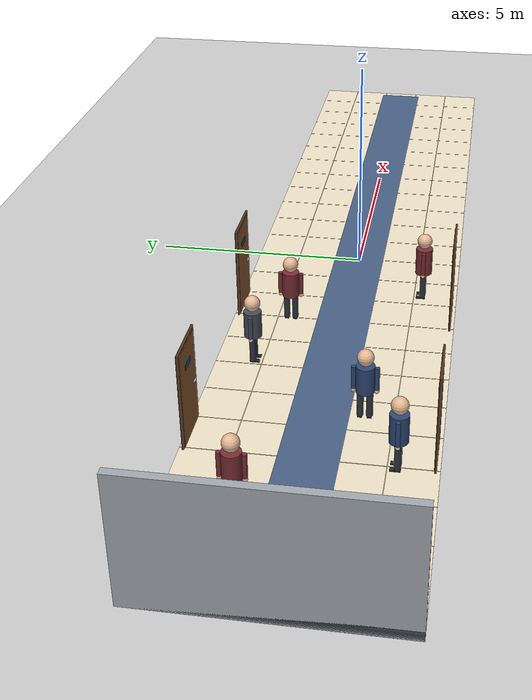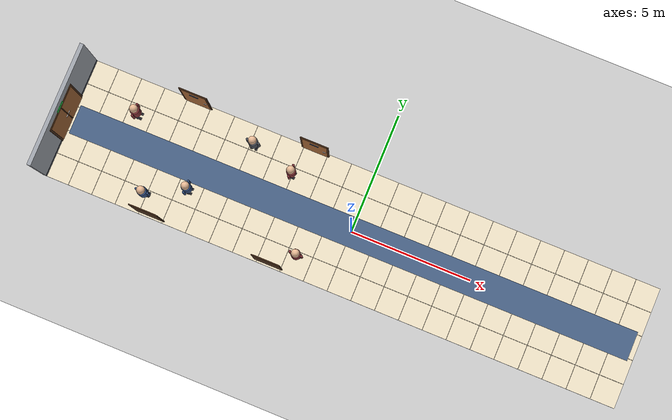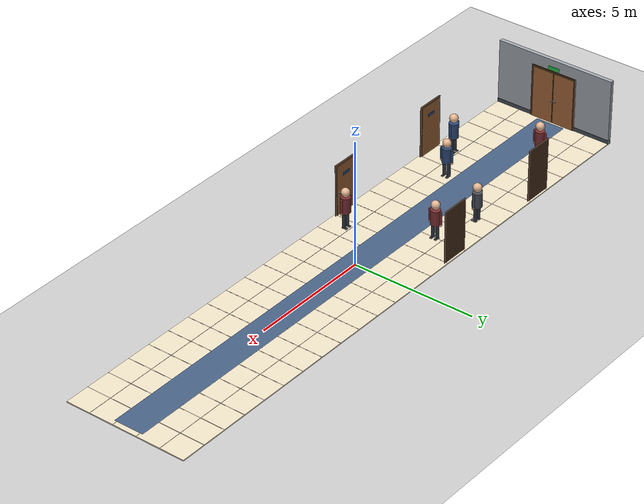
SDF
<sdf version="1.6">
 <world name="default">
  <include><uri>model://ground_plane</uri></include>
  <include><uri>model://sun</uri></include>
  <model name="koridor_zemini">
   <static>true</static>
   <pose>0 0 0.023 0 0 0</pose>
   <link name="link">
    <collision name="zemin_col"><geometry><box><size>24.0 5.0 0.046</size></box></geometry></collision>
    <visual name="zemin">
     <geometry><box><size>24.0 5.0 0.046</size></box></geometry>
     <material>
      <ambient>0.85 0.80 0.70 1</ambient>
      <diffuse>0.94 0.89 0.78 1</diffuse>
      <specular>0.35 0.35 0.35 1</specular>
     </material>
    </visual>
   </link>
  </model>
  <model name="koridor_serit">
   <static>true</static>
   <pose>0 0 0.048 0 0 0</pose>
   <link name="link">
    <visual name="orta_serit">
     <geometry><box><size>23.6 1.20 0.0008</size></box></geometry>
     <material><ambient>0.22 0.30 0.42 1</ambient><diffuse>0.28 0.38 0.52 1</diffuse></material>
    </visual>
   </link>
  </model>
  <model name="koridor_derzleri">
   <static>true</static>
   <pose>0 0 0.047 0 0 0</pose>
   <link name="link">
    <visual name="x_1">
     <pose>-11 0 0 0 0 0</pose>
     <geometry><box><size>0.015 5.0 0.0005</size></box></geometry>
     <material><ambient>0.68 0.63 0.54 1</ambient><diffuse>0.76 0.71 0.61 1</diffuse></material>
    </visual>
    <visual name="x_2">
     <pose>-10 0 0 0 0 0</pose>
     <geometry><box><size>0.015 5.0 0.0005</size></box></geometry>
     <material><ambient>0.68 0.63 0.54 1</ambient><diffuse>0.76 0.71 0.61 1</diffuse></material>
    </visual>
    <visual name="x_3">
     <pose>-9 0 0 0 0 0</pose>
     <geometry><box><size>0.015 5.0 0.0005</size></box></geometry>
     <material><ambient>0.68 0.63 0.54 1</ambient><diffuse>0.76 0.71 0.61 1</diffuse></material>
    </visual>
    <visual name="x_4">
     <pose>-8 0 0 0 0 0</pose>
     <geometry><box><size>0.015 5.0 0.0005</size></box></geometry>
     <material><ambient>0.68 0.63 0.54 1</ambient><diffuse>0.76 0.71 0.61 1</diffuse></material>
    </visual>
    <visual name="x_5">
     <pose>-7 0 0 0 0 0</pose>
     <geometry><box><size>0.015 5.0 0.0005</size></box></geometry>
     <material><ambient>0.68 0.63 0.54 1</ambient><diffuse>0.76 0.71 0.61 1</diffuse></material>
    </visual>
    <visual name="x_6">
     <pose>-6 0 0 0 0 0</pose>
     <geometry><box><size>0.015 5.0 0.0005</size></box></geometry>
     <material><ambient>0.68 0.63 0.54 1</ambient><diffuse>0.76 0.71 0.61 1</diffuse></material>
    </visual>
    <visual name="x_7">
     <pose>-5 0 0 0 0 0</pose>
     <geometry><box><size>0.015 5.0 0.0005</size></box></geometry>
     <material><ambient>0.68 0.63 0.54 1</ambient><diffuse>0.76 0.71 0.61 1</diffuse></material>
    </visual>
    <visual name="x_8">
     <pose>-4 0 0 0 0 0</pose>
     <geometry><box><size>0.015 5.0 0.0005</size></box></geometry>
     <material><ambient>0.68 0.63 0.54 1</ambient><diffuse>0.76 0.71 0.61 1</diffuse></material>
    </visual>
    <visual name="x_9">
     <pose>-3 0 0 0 0 0</pose>
     <geometry><box><size>0.015 5.0 0.0005</size></box></geometry>
     <material><ambient>0.68 0.63 0.54 1</ambient><diffuse>0.76 0.71 0.61 1</diffuse></material>
    </visual>
    <visual name="x_10">
     <pose>-2 0 0 0 0 0</pose>
     <geometry><box><size>0.015 5.0 0.0005</size></box></geometry>
     <material><ambient>0.68 0.63 0.54 1</ambient><diffuse>0.76 0.71 0.61 1</diffuse></material>
    </visual>
    <visual name="x_11">
     <pose>-1 0 0 0 0 0</pose>
     <geometry><box><size>0.015 5.0 0.0005</size></box></geometry>
     <material><ambient>0.68 0.63 0.54 1</ambient><diffuse>0.76 0.71 0.61 1</diffuse></material>
    </visual>
    <visual name="x_12">
     <geometry><box><size>0.015 5.0 0.0005</size></box></geometry>
     <material><ambient>0.68 0.63 0.54 1</ambient><diffuse>0.76 0.71 0.61 1</diffuse></material>
    </visual>
    <visual name="x_13">
     <pose>1 0 0 0 0 0</pose>
     <geometry><box><size>0.015 5.0 0.0005</size></box></geometry>
     <material><ambient>0.68 0.63 0.54 1</ambient><diffuse>0.76 0.71 0.61 1</diffuse></material>
    </visual>
    <visual name="x_14">
     <pose>2 0 0 0 0 0</pose>
     <geometry><box><size>0.015 5.0 0.0005</size></box></geometry>
     <material><ambient>0.68 0.63 0.54 1</ambient><diffuse>0.76 0.71 0.61 1</diffuse></material>
    </visual>
    <visual name="x_15">
     <pose>3 0 0 0 0 0</pose>
     <geometry><box><size>0.015 5.0 0.0005</size></box></geometry>
     <material><ambient>0.68 0.63 0.54 1</ambient><diffuse>0.76 0.71 0.61 1</diffuse></material>
    </visual>
    <visual name="x_16">
     <pose>4 0 0 0 0 0</pose>
     <geometry><box><size>0.015 5.0 0.0005</size></box></geometry>
     <material><ambient>0.68 0.63 0.54 1</ambient><diffuse>0.76 0.71 0.61 1</diffuse></material>
    </visual>
    <visual name="x_17">
     <pose>5 0 0 0 0 0</pose>
     <geometry><box><size>0.015 5.0 0.0005</size></box></geometry>
     <material><ambient>0.68 0.63 0.54 1</ambient><diffuse>0.76 0.71 0.61 1</diffuse></material>
    </visual>
    <visual name="x_18">
     <pose>6 0 0 0 0 0</pose>
     <geometry><box><size>0.015 5.0 0.0005</size></box></geometry>
     <material><ambient>0.68 0.63 0.54 1</ambient><diffuse>0.76 0.71 0.61 1</diffuse></material>
    </visual>
    <visual name="x_19">
     <pose>7 0 0 0 0 0</pose>
     <geometry><box><size>0.015 5.0 0.0005</size></box></geometry>
     <material><ambient>0.68 0.63 0.54 1</ambient><diffuse>0.76 0.71 0.61 1</diffuse></material>
    </visual>
    <visual name="x_20">
     <pose>8 0 0 0 0 0</pose>
     <geometry><box><size>0.015 5.0 0.0005</size></box></geometry>
     <material><ambient>0.68 0.63 0.54 1</ambient><diffuse>0.76 0.71 0.61 1</diffuse></material>
    </visual>
    <visual name="x_21">
     <pose>9 0 0 0 0 0</pose>
     <geometry><box><size>0.015 5.0 0.0005</size></box></geometry>
     <material><ambient>0.68 0.63 0.54 1</ambient><diffuse>0.76 0.71 0.61 1</diffuse></material>
    </visual>
    <visual name="x_22">
     <pose>10 0 0 0 0 0</pose>
     <geometry><box><size>0.015 5.0 0.0005</size></box></geometry>
     <material><ambient>0.68 0.63 0.54 1</ambient><diffuse>0.76 0.71 0.61 1</diffuse></material>
    </visual>
    <visual name="x_23">
     <pose>11 0 0 0 0 0</pose>
     <geometry><box><size>0.015 5.0 0.0005</size></box></geometry>
     <material><ambient>0.68 0.63 0.54 1</ambient><diffuse>0.76 0.71 0.61 1</diffuse></material>
    </visual>
    <visual name="y_1">
     <pose>0 -1.5 0 0 0 0</pose>
     <geometry><box><size>24.0 0.015 0.0005</size></box></geometry>
     <material><ambient>0.68 0.63 0.54 1</ambient><diffuse>0.76 0.71 0.61 1</diffuse></material>
    </visual>
    <visual name="y_2">
     <pose>0 -0.5 0 0 0 0</pose>
     <geometry><box><size>24.0 0.015 0.0005</size></box></geometry>
     <material><ambient>0.68 0.63 0.54 1</ambient><diffuse>0.76 0.71 0.61 1</diffuse></material>
    </visual>
    <visual name="y_3">
     <pose>0 0.5 0 0 0 0</pose>
     <geometry><box><size>24.0 0.015 0.0005</size></box></geometry>
     <material><ambient>0.68 0.63 0.54 1</ambient><diffuse>0.76 0.71 0.61 1</diffuse></material>
    </visual>
    <visual name="y_4">
     <pose>0 1.5 0 0 0 0</pose>
     <geometry><box><size>24.0 0.015 0.0005</size></box></geometry>
     <material><ambient>0.68 0.63 0.54 1</ambient><diffuse>0.76 0.71 0.61 1</diffuse></material>
    </visual>
   </link>
  </model>
  <model name="duvar_bati">
   <static>true</static>
   <pose>-12.0 0 1.35 0 0 0</pose>
   <link name="link">
    <collision name="col"><geometry><box><size>0.16 5.0 2.7</size></box></geometry></collision>
    <visual name="duvar">
     <geometry><box><size>0.16 5.0 2.7</size></box></geometry>
     <material><ambient>0.54 0.56 0.59 1</ambient><diffuse>0.64 0.66 0.69 1</diffuse></material>
    </visual>
    <visual name="supurgelik">
     <pose>0.005 0 -1.25 0 0 0</pose>
     <geometry><box><size>0.17 5.0 0.2</size></box></geometry>
     <material><ambient>0.22 0.24 0.27 1</ambient><diffuse>0.28 0.30 0.34 1</diffuse></material>
    </visual>
   </link>
  </model>
  <model name="kapi_kuzey_1">
   <static>true</static>
   <pose>-7.5 2.41 0 0 0 0</pose>
   <link name="link">
    <visual name="kasa">
     <pose>0 0 1.08 0 0 0</pose>
     <geometry><box><size>1.16 0.04 2.16</size></box></geometry>
     <material><ambient>0.22 0.14 0.08 1</ambient><diffuse>0.30 0.19 0.11 1</diffuse></material>
    </visual>
    <visual name="kanat">
     <pose>0 -0.008 1.05 0 0 0</pose>
     <geometry><box><size>1.02 0.045 2.08</size></box></geometry>
     <material><ambient>0.52 0.32 0.16 1</ambient><diffuse>0.65 0.41 0.22 1</diffuse></material>
    </visual>
    <visual name="kol">
     <pose>0.40 -0.04 0.98 0 0 0</pose>
     <geometry><box><size>0.12 0.03 0.03</size></box></geometry>
     <material><ambient>0.75 0.75 0.78 1</ambient><diffuse>0.88 0.88 0.90 1</diffuse></material>
    </visual>
    <visual name="tabela">
     <pose>0 -0.035 1.65 0 0 0</pose>
     <geometry><box><size>0.36 0.015 0.12</size></box></geometry>
     <material><ambient>0.12 0.22 0.38 1</ambient><diffuse>0.16 0.30 0.50 1</diffuse></material>
    </visual>
   </link>
  </model>
  <model name="kapi_kuzey_2">
   <static>true</static>
   <pose>-2.5 2.41 0 0 0 0</pose>
   <link name="link">
    <visual name="kasa">
     <pose>0 0 1.08 0 0 0</pose>
     <geometry><box><size>1.16 0.04 2.16</size></box></geometry>
     <material><ambient>0.22 0.14 0.08 1</ambient><diffuse>0.30 0.19 0.11 1</diffuse></material>
    </visual>
    <visual name="kanat">
     <pose>0 -0.008 1.05 0 0 0</pose>
     <geometry><box><size>1.02 0.045 2.08</size></box></geometry>
     <material><ambient>0.52 0.32 0.16 1</ambient><diffuse>0.65 0.41 0.22 1</diffuse></material>
    </visual>
    <visual name="kol">
     <pose>0.40 -0.04 0.98 0 0 0</pose>
     <geometry><box><size>0.12 0.03 0.03</size></box></geometry>
     <material><ambient>0.75 0.75 0.78 1</ambient><diffuse>0.88 0.88 0.90 1</diffuse></material>
    </visual>
    <visual name="tabela">
     <pose>0 -0.035 1.65 0 0 0</pose>
     <geometry><box><size>0.36 0.015 0.12</size></box></geometry>
     <material><ambient>0.12 0.22 0.38 1</ambient><diffuse>0.16 0.30 0.50 1</diffuse></material>
    </visual>
   </link>
  </model>
  <model name="kapi_guney_1">
   <static>true</static>
   <pose>-7.5 -2.41 0 0 0 0</pose>
   <link name="link">
    <visual name="kasa">
     <pose>0 0 1.08 0 0 0</pose>
     <geometry><box><size>1.16 0.04 2.16</size></box></geometry>
     <material><ambient>0.22 0.14 0.08 1</ambient><diffuse>0.30 0.19 0.11 1</diffuse></material>
    </visual>
    <visual name="kanat">
     <pose>0 0.008 1.05 0 0 0</pose>
     <geometry><box><size>1.02 0.045 2.08</size></box></geometry>
     <material><ambient>0.52 0.32 0.16 1</ambient><diffuse>0.65 0.41 0.22 1</diffuse></material>
    </visual>
    <visual name="kol">
     <pose>0.40 0.04 0.98 0 0 0</pose>
     <geometry><box><size>0.12 0.03 0.03</size></box></geometry>
     <material><ambient>0.75 0.75 0.78 1</ambient><diffuse>0.88 0.88 0.90 1</diffuse></material>
    </visual>
    <visual name="tabela">
     <pose>0 0.035 1.65 0 0 0</pose>
     <geometry><box><size>0.36 0.015 0.12</size></box></geometry>
     <material><ambient>0.12 0.22 0.38 1</ambient><diffuse>0.16 0.30 0.50 1</diffuse></material>
    </visual>
   </link>
  </model>
  <model name="kapi_guney_2">
   <static>true</static>
   <pose>-2.5 -2.41 0 0 0 0</pose>
   <link name="link">
    <visual name="kasa">
     <pose>0 0 1.08 0 0 0</pose>
     <geometry><box><size>1.16 0.04 2.16</size></box></geometry>
     <material><ambient>0.22 0.14 0.08 1</ambient><diffuse>0.30 0.19 0.11 1</diffuse></material>
    </visual>
    <visual name="kanat">
     <pose>0 0.008 1.05 0 0 0</pose>
     <geometry><box><size>1.02 0.045 2.08</size></box></geometry>
     <material><ambient>0.52 0.32 0.16 1</ambient><diffuse>0.65 0.41 0.22 1</diffuse></material>
    </visual>
    <visual name="kol">
     <pose>0.40 0.04 0.98 0 0 0</pose>
     <geometry><box><size>0.12 0.03 0.03</size></box></geometry>
     <material><ambient>0.75 0.75 0.78 1</ambient><diffuse>0.88 0.88 0.90 1</diffuse></material>
    </visual>
    <visual name="tabela">
     <pose>0 0.035 1.65 0 0 0</pose>
     <geometry><box><size>0.36 0.015 0.12</size></box></geometry>
     <material><ambient>0.12 0.22 0.38 1</ambient><diffuse>0.16 0.30 0.50 1</diffuse></material>
    </visual>
   </link>
  </model>
  <model name="kapi_bati_giris">
   <static>true</static>
   <pose>-11.91 0 0 0 0 0</pose>
   <link name="link">
    <visual name="kasa">
     <pose>0 0 1.12 0 0 0</pose>
     <geometry><box><size>0.04 1.96 2.24</size></box></geometry>
     <material><ambient>0.22 0.14 0.08 1</ambient><diffuse>0.30 0.19 0.11 1</diffuse></material>
    </visual>
    <visual name="kanat_sol">
     <pose>0.008 0.46 1.09 0 0 0</pose>
     <geometry><box><size>0.045 0.88 2.16</size></box></geometry>
     <material><ambient>0.52 0.32 0.16 1</ambient><diffuse>0.65 0.41 0.22 1</diffuse></material>
    </visual>
    <visual name="kanat_sag">
     <pose>0.008 -0.46 1.09 0 0 0</pose>
     <geometry><box><size>0.045 0.88 2.16</size></box></geometry>
     <material><ambient>0.52 0.32 0.16 1</ambient><diffuse>0.65 0.41 0.22 1</diffuse></material>
    </visual>
    <visual name="kol_sol">
     <pose>0.04 0.08 0.98 0 0 0</pose>
     <geometry><box><size>0.03 0.12 0.03</size></box></geometry>
     <material><ambient>0.75 0.75 0.78 1</ambient><diffuse>0.88 0.88 0.90 1</diffuse></material>
    </visual>
    <visual name="kol_sag">
     <pose>0.04 -0.08 0.98 0 0 0</pose>
     <geometry><box><size>0.03 0.12 0.03</size></box></geometry>
     <material><ambient>0.75 0.75 0.78 1</ambient><diffuse>0.88 0.88 0.90 1</diffuse></material>
    </visual>
    <visual name="exit_tabela">
     <pose>0.03 0 2.36 0 0 0</pose>
     <geometry><box><size>0.02 0.48 0.16</size></box></geometry>
     <material><ambient>0.10 0.55 0.20 1</ambient><diffuse>0.15 0.75 0.28 1</diffuse></material>
    </visual>
   </link>
  </model>
  <model name="insan_1">
   <static>false</static>
   <pose>-8.0 -1.7 0 0 0 1.57</pose>
   <link name="base_link">
    <inertial>
     <pose>0 0 0.80 0 0 0</pose>
     <mass>50.0</mass>
     <inertia><ixx>100.0</ixx><ixy>0</ixy><ixz>0</ixz><iyy>100.0</iyy><iyz>0</iyz><izz>10.0</izz></inertia>
    </inertial>
    <collision name="tek_collision">
     <pose>0 0 0.8316 0 0 0</pose>
     <geometry><cylinder><radius>0.23</radius><length>1.6132</length></cylinder></geometry>
     <surface><friction><ode><mu>0.0</mu><mu2>0.0</mu2></ode></friction></surface>
    </collision>
    <visual name="govde_vis">
     <pose>0 0 0.9710 0 0 0</pose>
     <geometry><cylinder><radius>0.19</radius><length>0.6144</length></cylinder></geometry>
     <material><ambient>0.14 0.22 0.36 1</ambient><diffuse>0.18 0.28 0.46 1</diffuse></material>
    </visual>
    <visual name="kafa_vis">
     <pose>0 0 1.4682 0 0 0</pose>
     <geometry><sphere><radius>0.17</radius></sphere></geometry>
     <material><ambient>0.85 0.68 0.55 1</ambient><diffuse>0.90 0.72 0.58 1</diffuse></material>
    </visual>
    <visual name="bacak_sol_vis">
     <pose>0 0.095 0.3694 0 0 0</pose>
     <geometry><cylinder><radius>0.068</radius><length>0.5888</length></cylinder></geometry>
     <material><ambient>0.14 0.16 0.20 1</ambient><diffuse>0.18 0.20 0.25 1</diffuse></material>
    </visual>
    <visual name="bacak_sag_vis">
     <pose>0 -0.095 0.3694 0 0 0</pose>
     <geometry><cylinder><radius>0.068</radius><length>0.5888</length></cylinder></geometry>
     <material><ambient>0.14 0.16 0.20 1</ambient><diffuse>0.18 0.20 0.25 1</diffuse></material>
    </visual>
    <visual name="ayak_sol_vis">
     <pose>0.04 0.095 0.0500 0 0 0</pose>
     <geometry><box><size>0.21 0.095 0.05</size></box></geometry>
     <material><ambient>0.10 0.10 0.11 1</ambient><diffuse>0.15 0.15 0.17 1</diffuse></material>
    </visual>
    <visual name="ayak_sag_vis">
     <pose>0.04 -0.095 0.0500 0 0 0</pose>
     <geometry><box><size>0.21 0.095 0.05</size></box></geometry>
     <material><ambient>0.10 0.10 0.11 1</ambient><diffuse>0.15 0.15 0.17 1</diffuse></material>
    </visual>
    <visual name="kol_sol_vis">
     <pose>0 0.235 0.9871 0 0 0</pose>
     <geometry><cylinder><radius>0.048</radius><length>0.5222</length></cylinder></geometry>
     <material><ambient>0.14 0.22 0.36 1</ambient><diffuse>0.18 0.28 0.46 1</diffuse></material>
    </visual>
    <visual name="kol_sag_vis">
     <pose>0 -0.235 0.9871 0 0 0</pose>
     <geometry><cylinder><radius>0.048</radius><length>0.5222</length></cylinder></geometry>
     <material><ambient>0.14 0.22 0.36 1</ambient><diffuse>0.18 0.28 0.46 1</diffuse></material>
    </visual>
    <visual name="el_sol_vis">
     <pose>0 0.235 0.6860 0 0 0</pose>
     <geometry><sphere><radius>0.048</radius></sphere></geometry>
     <material><ambient>0.85 0.68 0.55 1</ambient><diffuse>0.90 0.72 0.58 1</diffuse></material>
    </visual>
    <visual name="el_sag_vis">
     <pose>0 -0.235 0.6860 0 0 0</pose>
     <geometry><sphere><radius>0.048</radius></sphere></geometry>
     <material><ambient>0.85 0.68 0.55 1</ambient><diffuse>0.90 0.72 0.58 1</diffuse></material>
    </visual>
   </link>
   <plugin name="insan_1_planar_move" filename="libgazebo_ros_planar_move.so">
    <ros>
     <namespace>/insan_1</namespace>
     <remapping>cmd_vel:=cmd_vel</remapping>
     <remapping>odom:=odom</remapping>
    </ros>
    <update_rate>30</update_rate>
    <publish_rate>10</publish_rate>
    <publish_odom>false</publish_odom>
    <publish_odom_tf>false</publish_odom_tf>
    <odometry_frame>insan_1_odom</odometry_frame>
    <robot_base_frame>base_link</robot_base_frame>
   </plugin>
  </model>
  <model name="insan_2">
   <static>false</static>
   <pose>-4.8 1.7 0 0 0 -1.57</pose>
   <link name="base_link">
    <inertial>
     <pose>0 0 0.80 0 0 0</pose>
     <mass>50.0</mass>
     <inertia><ixx>100.0</ixx><ixy>0</ixy><ixz>0</ixz><iyy>100.0</iyy><iyz>0</iyz><izz>10.0</izz></inertia>
    </inertial>
    <collision name="tek_collision">
     <pose>0 0 0.8128 0 0 0</pose>
     <geometry><cylinder><radius>0.23</radius><length>1.5756</length></cylinder></geometry>
     <surface><friction><ode><mu>0.0</mu><mu2>0.0</mu2></ode></friction></surface>
    </collision>
    <visual name="govde_vis">
     <pose>0 0 0.9430 0 0 0</pose>
     <geometry><cylinder><radius>0.19</radius><length>0.5952</length></cylinder></geometry>
     <material><ambient>0.22 0.24 0.27 1</ambient><diffuse>0.28 0.30 0.34 1</diffuse></material>
    </visual>
    <visual name="kafa_vis">
     <pose>0 0 1.4306 0 0 0</pose>
     <geometry><sphere><radius>0.17</radius></sphere></geometry>
     <material><ambient>0.85 0.68 0.55 1</ambient><diffuse>0.90 0.72 0.58 1</diffuse></material>
    </visual>
    <visual name="bacak_sol_vis">
     <pose>0 0.095 0.3602 0 0 0</pose>
     <geometry><cylinder><radius>0.068</radius><length>0.5704</length></cylinder></geometry>
     <material><ambient>0.14 0.16 0.20 1</ambient><diffuse>0.18 0.20 0.25 1</diffuse></material>
    </visual>
    <visual name="bacak_sag_vis">
     <pose>0 -0.095 0.3602 0 0 0</pose>
     <geometry><cylinder><radius>0.068</radius><length>0.5704</length></cylinder></geometry>
     <material><ambient>0.14 0.16 0.20 1</ambient><diffuse>0.18 0.20 0.25 1</diffuse></material>
    </visual>
    <visual name="ayak_sol_vis">
     <pose>0.04 0.095 0.0500 0 0 0</pose>
     <geometry><box><size>0.21 0.095 0.05</size></box></geometry>
     <material><ambient>0.10 0.10 0.11 1</ambient><diffuse>0.15 0.15 0.17 1</diffuse></material>
    </visual>
    <visual name="ayak_sag_vis">
     <pose>0.04 -0.095 0.0500 0 0 0</pose>
     <geometry><box><size>0.21 0.095 0.05</size></box></geometry>
     <material><ambient>0.10 0.10 0.11 1</ambient><diffuse>0.15 0.15 0.17 1</diffuse></material>
    </visual>
    <visual name="kol_sol_vis">
     <pose>0 0.235 0.9576 0 0 0</pose>
     <geometry><cylinder><radius>0.048</radius><length>0.5059</length></cylinder></geometry>
     <material><ambient>0.22 0.24 0.27 1</ambient><diffuse>0.28 0.30 0.34 1</diffuse></material>
    </visual>
    <visual name="kol_sag_vis">
     <pose>0 -0.235 0.9576 0 0 0</pose>
     <geometry><cylinder><radius>0.048</radius><length>0.5059</length></cylinder></geometry>
     <material><ambient>0.22 0.24 0.27 1</ambient><diffuse>0.28 0.30 0.34 1</diffuse></material>
    </visual>
    <visual name="el_sol_vis">
     <pose>0 0.235 0.6647 0 0 0</pose>
     <geometry><sphere><radius>0.048</radius></sphere></geometry>
     <material><ambient>0.85 0.68 0.55 1</ambient><diffuse>0.90 0.72 0.58 1</diffuse></material>
    </visual>
    <visual name="el_sag_vis">
     <pose>0 -0.235 0.6647 0 0 0</pose>
     <geometry><sphere><radius>0.048</radius></sphere></geometry>
     <material><ambient>0.85 0.68 0.55 1</ambient><diffuse>0.90 0.72 0.58 1</diffuse></material>
    </visual>
   </link>
   <plugin name="insan_2_planar_move" filename="libgazebo_ros_planar_move.so">
    <ros>
     <namespace>/insan_2</namespace>
     <remapping>cmd_vel:=cmd_vel</remapping>
     <remapping>odom:=odom</remapping>
    </ros>
    <update_rate>30</update_rate>
    <publish_rate>10</publish_rate>
    <publish_odom>false</publish_odom>
    <publish_odom_tf>false</publish_odom_tf>
    <odometry_frame>insan_2_odom</odometry_frame>
    <robot_base_frame>base_link</robot_base_frame>
   </plugin>
  </model>
  <model name="insan_3">
   <static>false</static>
   <pose>-1.6 -1.7 0 0 0 1.57</pose>
   <link name="base_link">
    <inertial>
     <pose>0 0 0.80 0 0 0</pose>
     <mass>50.0</mass>
     <inertia><ixx>100.0</ixx><ixy>0</ixy><ixz>0</ixz><iyy>100.0</iyy><iyz>0</iyz><izz>10.0</izz></inertia>
    </inertial>
    <collision name="tek_collision">
     <pose>0 0 0.8504 0 0 0</pose>
     <geometry><cylinder><radius>0.23</radius><length>1.6508</length></cylinder></geometry>
     <surface><friction><ode><mu>0.0</mu><mu2>0.0</mu2></ode></friction></surface>
    </collision>
    <visual name="govde_vis">
     <pose>0 0 0.9990 0 0 0</pose>
     <geometry><cylinder><radius>0.19</radius><length>0.6336</length></cylinder></geometry>
     <material><ambient>0.38 0.14 0.16 1</ambient><diffuse>0.48 0.18 0.20 1</diffuse></material>
    </visual>
    <visual name="kafa_vis">
     <pose>0 0 1.5058 0 0 0</pose>
     <geometry><sphere><radius>0.17</radius></sphere></geometry>
     <material><ambient>0.85 0.68 0.55 1</ambient><diffuse>0.90 0.72 0.58 1</diffuse></material>
    </visual>
    <visual name="bacak_sol_vis">
     <pose>0 0.095 0.3786 0 0 0</pose>
     <geometry><cylinder><radius>0.068</radius><length>0.6072</length></cylinder></geometry>
     <material><ambient>0.14 0.16 0.20 1</ambient><diffuse>0.18 0.20 0.25 1</diffuse></material>
    </visual>
    <visual name="bacak_sag_vis">
     <pose>0 -0.095 0.3786 0 0 0</pose>
     <geometry><cylinder><radius>0.068</radius><length>0.6072</length></cylinder></geometry>
     <material><ambient>0.14 0.16 0.20 1</ambient><diffuse>0.18 0.20 0.25 1</diffuse></material>
    </visual>
    <visual name="ayak_sol_vis">
     <pose>0.04 0.095 0.0500 0 0 0</pose>
     <geometry><box><size>0.21 0.095 0.05</size></box></geometry>
     <material><ambient>0.10 0.10 0.11 1</ambient><diffuse>0.15 0.15 0.17 1</diffuse></material>
    </visual>
    <visual name="ayak_sag_vis">
     <pose>0.04 -0.095 0.0500 0 0 0</pose>
     <geometry><box><size>0.21 0.095 0.05</size></box></geometry>
     <material><ambient>0.10 0.10 0.11 1</ambient><diffuse>0.15 0.15 0.17 1</diffuse></material>
    </visual>
    <visual name="kol_sol_vis">
     <pose>0 0.235 1.0165 0 0 0</pose>
     <geometry><cylinder><radius>0.048</radius><length>0.5386</length></cylinder></geometry>
     <material><ambient>0.38 0.14 0.16 1</ambient><diffuse>0.48 0.18 0.20 1</diffuse></material>
    </visual>
    <visual name="kol_sag_vis">
     <pose>0 -0.235 1.0165 0 0 0</pose>
     <geometry><cylinder><radius>0.048</radius><length>0.5386</length></cylinder></geometry>
     <material><ambient>0.38 0.14 0.16 1</ambient><diffuse>0.48 0.18 0.20 1</diffuse></material>
    </visual>
    <visual name="el_sol_vis">
     <pose>0 0.235 0.7072 0 0 0</pose>
     <geometry><sphere><radius>0.048</radius></sphere></geometry>
     <material><ambient>0.85 0.68 0.55 1</ambient><diffuse>0.90 0.72 0.58 1</diffuse></material>
    </visual>
    <visual name="el_sag_vis">
     <pose>0 -0.235 0.7072 0 0 0</pose>
     <geometry><sphere><radius>0.048</radius></sphere></geometry>
     <material><ambient>0.85 0.68 0.55 1</ambient><diffuse>0.90 0.72 0.58 1</diffuse></material>
    </visual>
   </link>
   <plugin name="insan_3_planar_move" filename="libgazebo_ros_planar_move.so">
    <ros>
     <namespace>/insan_3</namespace>
     <remapping>cmd_vel:=cmd_vel</remapping>
     <remapping>odom:=odom</remapping>
    </ros>
    <update_rate>30</update_rate>
    <publish_rate>10</publish_rate>
    <publish_odom>false</publish_odom>
    <publish_odom_tf>false</publish_odom_tf>
    <odometry_frame>insan_3_odom</odometry_frame>
    <robot_base_frame>base_link</robot_base_frame>
   </plugin>
  </model>
  <model name="insan_7">
   <static>false</static>
   <pose>-9.5 1.1 0 0 0 0.0</pose>
   <link name="base_link">
    <inertial>
     <pose>0 0 0.80 0 0 0</pose>
     <mass>50.0</mass>
     <inertia><ixx>100.0</ixx><ixy>0</ixy><ixz>0</ixz><iyy>100.0</iyy><iyz>0</iyz><izz>10.0</izz></inertia>
    </inertial>
    <collision name="tek_collision">
     <pose>0 0 0.8269 0 0 0</pose>
     <geometry><cylinder><radius>0.23</radius><length>1.6038</length></cylinder></geometry>
     <surface><friction><ode><mu>0.0</mu><mu2>0.0</mu2></ode></friction></surface>
    </collision>
    <visual name="govde_vis">
     <pose>0 0 0.9640 0 0 0</pose>
     <geometry><cylinder><radius>0.19</radius><length>0.6096</length></cylinder></geometry>
     <material><ambient>0.38 0.14 0.16 1</ambient><diffuse>0.48 0.18 0.20 1</diffuse></material>
    </visual>
    <visual name="kafa_vis">
     <pose>0 0 1.4588 0 0 0</pose>
     <geometry><sphere><radius>0.17</radius></sphere></geometry>
     <material><ambient>0.85 0.68 0.55 1</ambient><diffuse>0.90 0.72 0.58 1</diffuse></material>
    </visual>
    <visual name="bacak_sol_vis">
     <pose>0 0.095 0.3671 0 0 0</pose>
     <geometry><cylinder><radius>0.068</radius><length>0.5842</length></cylinder></geometry>
     <material><ambient>0.14 0.16 0.20 1</ambient><diffuse>0.18 0.20 0.25 1</diffuse></material>
    </visual>
    <visual name="bacak_sag_vis">
     <pose>0 -0.095 0.3671 0 0 0</pose>
     <geometry><cylinder><radius>0.068</radius><length>0.5842</length></cylinder></geometry>
     <material><ambient>0.14 0.16 0.20 1</ambient><diffuse>0.18 0.20 0.25 1</diffuse></material>
    </visual>
    <visual name="ayak_sol_vis">
     <pose>0.04 0.095 0.0500 0 0 0</pose>
     <geometry><box><size>0.21 0.095 0.05</size></box></geometry>
     <material><ambient>0.10 0.10 0.11 1</ambient><diffuse>0.15 0.15 0.17 1</diffuse></material>
    </visual>
    <visual name="ayak_sag_vis">
     <pose>0.04 -0.095 0.0500 0 0 0</pose>
     <geometry><box><size>0.21 0.095 0.05</size></box></geometry>
     <material><ambient>0.10 0.10 0.11 1</ambient><diffuse>0.15 0.15 0.17 1</diffuse></material>
    </visual>
    <visual name="kol_sol_vis">
     <pose>0 0.235 0.9797 0 0 0</pose>
     <geometry><cylinder><radius>0.048</radius><length>0.5182</length></cylinder></geometry>
     <material><ambient>0.38 0.14 0.16 1</ambient><diffuse>0.48 0.18 0.20 1</diffuse></material>
    </visual>
    <visual name="kol_sag_vis">
     <pose>0 -0.235 0.9797 0 0 0</pose>
     <geometry><cylinder><radius>0.048</radius><length>0.5182</length></cylinder></geometry>
     <material><ambient>0.38 0.14 0.16 1</ambient><diffuse>0.48 0.18 0.20 1</diffuse></material>
    </visual>
    <visual name="el_sol_vis">
     <pose>0 0.235 0.6806 0 0 0</pose>
     <geometry><sphere><radius>0.048</radius></sphere></geometry>
     <material><ambient>0.85 0.68 0.55 1</ambient><diffuse>0.90 0.72 0.58 1</diffuse></material>
    </visual>
    <visual name="el_sag_vis">
     <pose>0 -0.235 0.6806 0 0 0</pose>
     <geometry><sphere><radius>0.048</radius></sphere></geometry>
     <material><ambient>0.85 0.68 0.55 1</ambient><diffuse>0.90 0.72 0.58 1</diffuse></material>
    </visual>
   </link>
   <plugin name="insan_7_planar_move" filename="libgazebo_ros_planar_move.so">
    <ros>
     <namespace>/insan_7</namespace>
     <remapping>cmd_vel:=cmd_vel</remapping>
     <remapping>odom:=odom</remapping>
    </ros>
    <update_rate>30</update_rate>
    <publish_rate>10</publish_rate>
    <publish_odom>false</publish_odom>
    <publish_odom_tf>false</publish_odom_tf>
    <odometry_frame>insan_7_odom</odometry_frame>
    <robot_base_frame>base_link</robot_base_frame>
   </plugin>
  </model>
  <model name="insan_9">
   <static>false</static>
   <pose>-6.5 -0.9 0 0 0 0.0</pose>
   <link name="base_link">
    <inertial>
     <pose>0 0 0.80 0 0 0</pose>
     <mass>50.0</mass>
     <inertia><ixx>100.0</ixx><ixy>0</ixy><ixz>0</ixz><iyy>100.0</iyy><iyz>0</iyz><izz>10.0</izz></inertia>
    </inertial>
    <collision name="tek_collision">
     <pose>0 0 0.8175 0 0 0</pose>
     <geometry><cylinder><radius>0.23</radius><length>1.5850</length></cylinder></geometry>
     <surface><friction><ode><mu>0.0</mu><mu2>0.0</mu2></ode></friction></surface>
    </collision>
    <visual name="govde_vis">
     <pose>0 0 0.9500 0 0 0</pose>
     <geometry><cylinder><radius>0.19</radius><length>0.6000</length></cylinder></geometry>
     <material><ambient>0.14 0.22 0.36 1</ambient><diffuse>0.18 0.28 0.46 1</diffuse></material>
    </visual>
    <visual name="kafa_vis">
     <pose>0 0 1.4400 0 0 0</pose>
     <geometry><sphere><radius>0.17</radius></sphere></geometry>
     <material><ambient>0.85 0.68 0.55 1</ambient><diffuse>0.90 0.72 0.58 1</diffuse></material>
    </visual>
    <visual name="bacak_sol_vis">
     <pose>0 0.095 0.3625 0 0 0</pose>
     <geometry><cylinder><radius>0.068</radius><length>0.5750</length></cylinder></geometry>
     <material><ambient>0.14 0.16 0.20 1</ambient><diffuse>0.18 0.20 0.25 1</diffuse></material>
    </visual>
    <visual name="bacak_sag_vis">
     <pose>0 -0.095 0.3625 0 0 0</pose>
     <geometry><cylinder><radius>0.068</radius><length>0.5750</length></cylinder></geometry>
     <material><ambient>0.14 0.16 0.20 1</ambient><diffuse>0.18 0.20 0.25 1</diffuse></material>
    </visual>
    <visual name="ayak_sol_vis">
     <pose>0.04 0.095 0.0500 0 0 0</pose>
     <geometry><box><size>0.21 0.095 0.05</size></box></geometry>
     <material><ambient>0.10 0.10 0.11 1</ambient><diffuse>0.15 0.15 0.17 1</diffuse></material>
    </visual>
    <visual name="ayak_sag_vis">
     <pose>0.04 -0.095 0.0500 0 0 0</pose>
     <geometry><box><size>0.21 0.095 0.05</size></box></geometry>
     <material><ambient>0.10 0.10 0.11 1</ambient><diffuse>0.15 0.15 0.17 1</diffuse></material>
    </visual>
    <visual name="kol_sol_vis">
     <pose>0 0.235 0.9650 0 0 0</pose>
     <geometry><cylinder><radius>0.048</radius><length>0.5100</length></cylinder></geometry>
     <material><ambient>0.14 0.22 0.36 1</ambient><diffuse>0.18 0.28 0.46 1</diffuse></material>
    </visual>
    <visual name="kol_sag_vis">
     <pose>0 -0.235 0.9650 0 0 0</pose>
     <geometry><cylinder><radius>0.048</radius><length>0.5100</length></cylinder></geometry>
     <material><ambient>0.14 0.22 0.36 1</ambient><diffuse>0.18 0.28 0.46 1</diffuse></material>
    </visual>
    <visual name="el_sol_vis">
     <pose>0 0.235 0.6700 0 0 0</pose>
     <geometry><sphere><radius>0.048</radius></sphere></geometry>
     <material><ambient>0.85 0.68 0.55 1</ambient><diffuse>0.90 0.72 0.58 1</diffuse></material>
    </visual>
    <visual name="el_sag_vis">
     <pose>0 -0.235 0.6700 0 0 0</pose>
     <geometry><sphere><radius>0.048</radius></sphere></geometry>
     <material><ambient>0.85 0.68 0.55 1</ambient><diffuse>0.90 0.72 0.58 1</diffuse></material>
    </visual>
   </link>
   <plugin name="insan_9_planar_move" filename="libgazebo_ros_planar_move.so">
    <ros>
     <namespace>/insan_9</namespace>
     <remapping>cmd_vel:=cmd_vel</remapping>
     <remapping>odom:=odom</remapping>
    </ros>
    <update_rate>30</update_rate>
    <publish_rate>10</publish_rate>
    <publish_odom>false</publish_odom>
    <publish_odom_tf>false</publish_odom_tf>
    <odometry_frame>insan_9_odom</odometry_frame>
    <robot_base_frame>base_link</robot_base_frame>
   </plugin>
  </model>
  <model name="insan_11">
   <static>false</static>
   <pose>-3.0 1.2 0 0 0 0.0</pose>
   <link name="base_link">
    <inertial>
     <pose>0 0 0.80 0 0 0</pose>
     <mass>50.0</mass>
     <inertia><ixx>100.0</ixx><ixy>0</ixy><ixz>0</ixz><iyy>100.0</iyy><iyz>0</iyz><izz>10.0</izz></inertia>
    </inertial>
    <collision name="tek_collision">
     <pose>0 0 0.8081 0 0 0</pose>
     <geometry><cylinder><radius>0.23</radius><length>1.5662</length></cylinder></geometry>
     <surface><friction><ode><mu>0.0</mu><mu2>0.0</mu2></ode></friction></surface>
    </collision>
    <visual name="govde_vis">
     <pose>0 0 0.9360 0 0 0</pose>
     <geometry><cylinder><radius>0.19</radius><length>0.5904</length></cylinder></geometry>
     <material><ambient>0.38 0.14 0.16 1</ambient><diffuse>0.48 0.18 0.20 1</diffuse></material>
    </visual>
    <visual name="kafa_vis">
     <pose>0 0 1.4212 0 0 0</pose>
     <geometry><sphere><radius>0.17</radius></sphere></geometry>
     <material><ambient>0.85 0.68 0.55 1</ambient><diffuse>0.90 0.72 0.58 1</diffuse></material>
    </visual>
    <visual name="bacak_sol_vis">
     <pose>0 0.095 0.3579 0 0 0</pose>
     <geometry><cylinder><radius>0.068</radius><length>0.5658</length></cylinder></geometry>
     <material><ambient>0.14 0.16 0.20 1</ambient><diffuse>0.18 0.20 0.25 1</diffuse></material>
    </visual>
    <visual name="bacak_sag_vis">
     <pose>0 -0.095 0.3579 0 0 0</pose>
     <geometry><cylinder><radius>0.068</radius><length>0.5658</length></cylinder></geometry>
     <material><ambient>0.14 0.16 0.20 1</ambient><diffuse>0.18 0.20 0.25 1</diffuse></material>
    </visual>
    <visual name="ayak_sol_vis">
     <pose>0.04 0.095 0.0500 0 0 0</pose>
     <geometry><box><size>0.21 0.095 0.05</size></box></geometry>
     <material><ambient>0.10 0.10 0.11 1</ambient><diffuse>0.15 0.15 0.17 1</diffuse></material>
    </visual>
    <visual name="ayak_sag_vis">
     <pose>0.04 -0.095 0.0500 0 0 0</pose>
     <geometry><box><size>0.21 0.095 0.05</size></box></geometry>
     <material><ambient>0.10 0.10 0.11 1</ambient><diffuse>0.15 0.15 0.17 1</diffuse></material>
    </visual>
    <visual name="kol_sol_vis">
     <pose>0 0.235 0.9503 0 0 0</pose>
     <geometry><cylinder><radius>0.048</radius><length>0.5018</length></cylinder></geometry>
     <material><ambient>0.38 0.14 0.16 1</ambient><diffuse>0.48 0.18 0.20 1</diffuse></material>
    </visual>
    <visual name="kol_sag_vis">
     <pose>0 -0.235 0.9503 0 0 0</pose>
     <geometry><cylinder><radius>0.048</radius><length>0.5018</length></cylinder></geometry>
     <material><ambient>0.38 0.14 0.16 1</ambient><diffuse>0.48 0.18 0.20 1</diffuse></material>
    </visual>
    <visual name="el_sol_vis">
     <pose>0 0.235 0.6594 0 0 0</pose>
     <geometry><sphere><radius>0.048</radius></sphere></geometry>
     <material><ambient>0.85 0.68 0.55 1</ambient><diffuse>0.90 0.72 0.58 1</diffuse></material>
    </visual>
    <visual name="el_sag_vis">
     <pose>0 -0.235 0.6594 0 0 0</pose>
     <geometry><sphere><radius>0.048</radius></sphere></geometry>
     <material><ambient>0.85 0.68 0.55 1</ambient><diffuse>0.90 0.72 0.58 1</diffuse></material>
    </visual>
   </link>
   <plugin name="insan_11_planar_move" filename="libgazebo_ros_planar_move.so">
    <ros>
     <namespace>/insan_11</namespace>
     <remapping>cmd_vel:=cmd_vel</remapping>
     <remapping>odom:=odom</remapping>
    </ros>
    <update_rate>30</update_rate>
    <publish_rate>10</publish_rate>
    <publish_odom>false</publish_odom>
    <publish_odom_tf>false</publish_odom_tf>
    <odometry_frame>insan_11_odom</odometry_frame>
    <robot_base_frame>base_link</robot_base_frame>
   </plugin>
  </model>
 </world>
</sdf>
